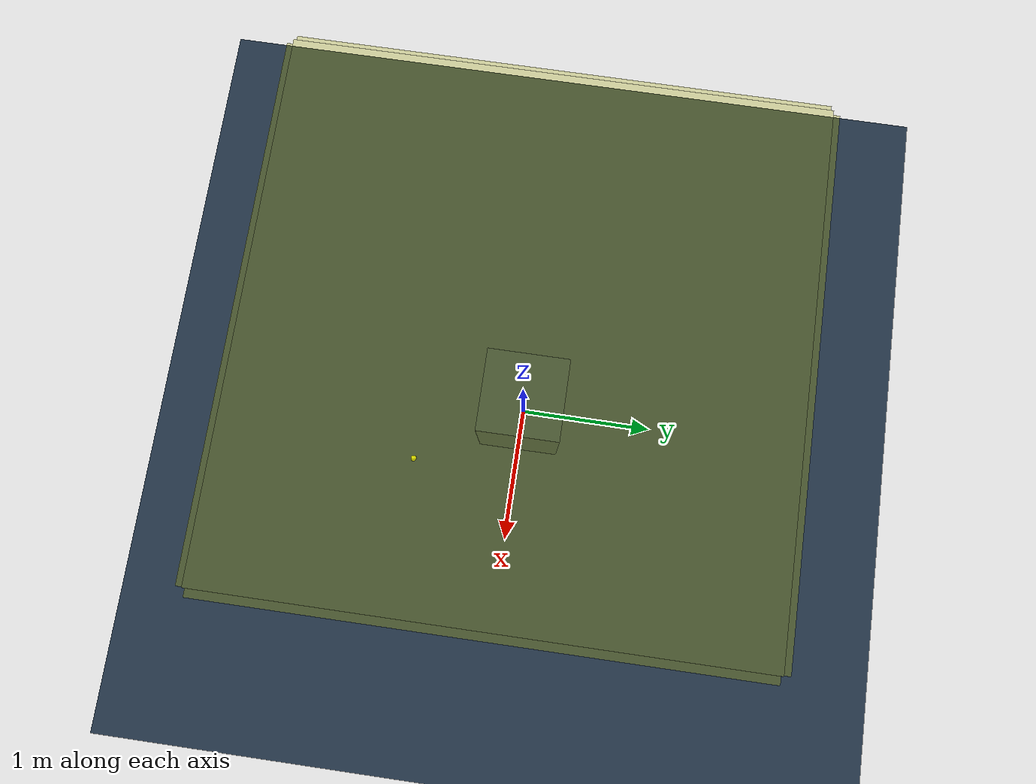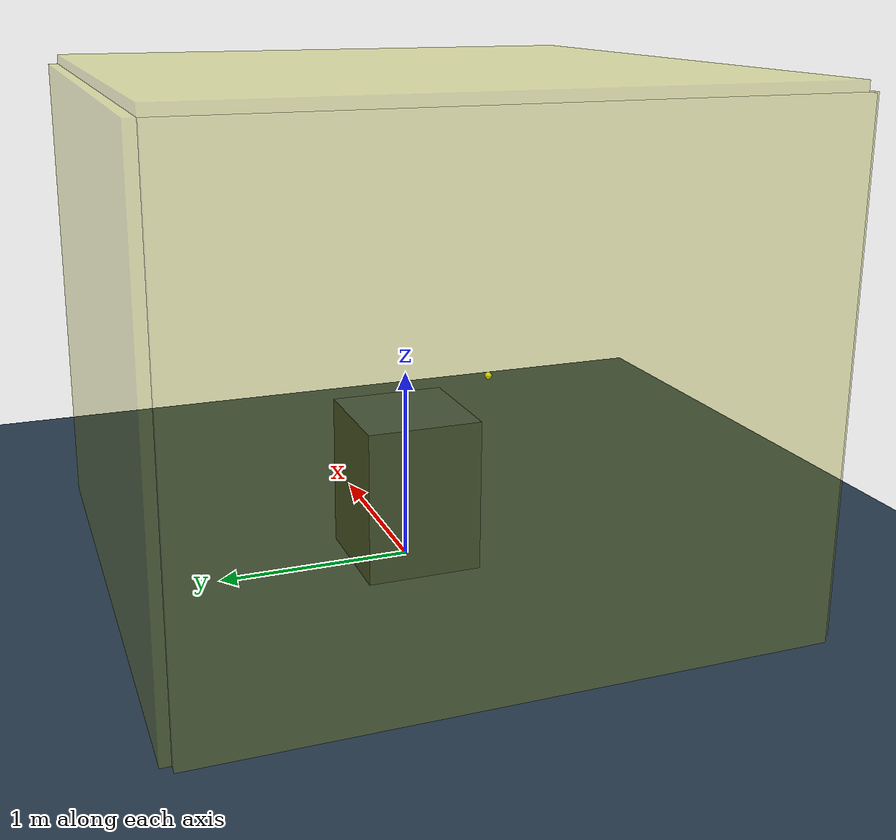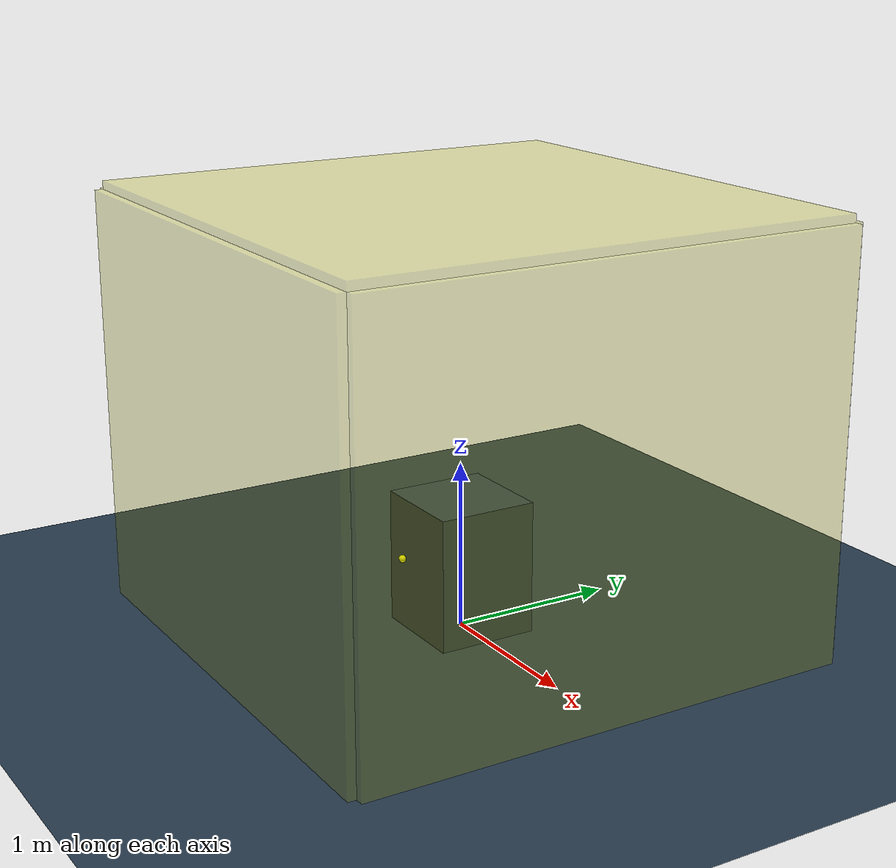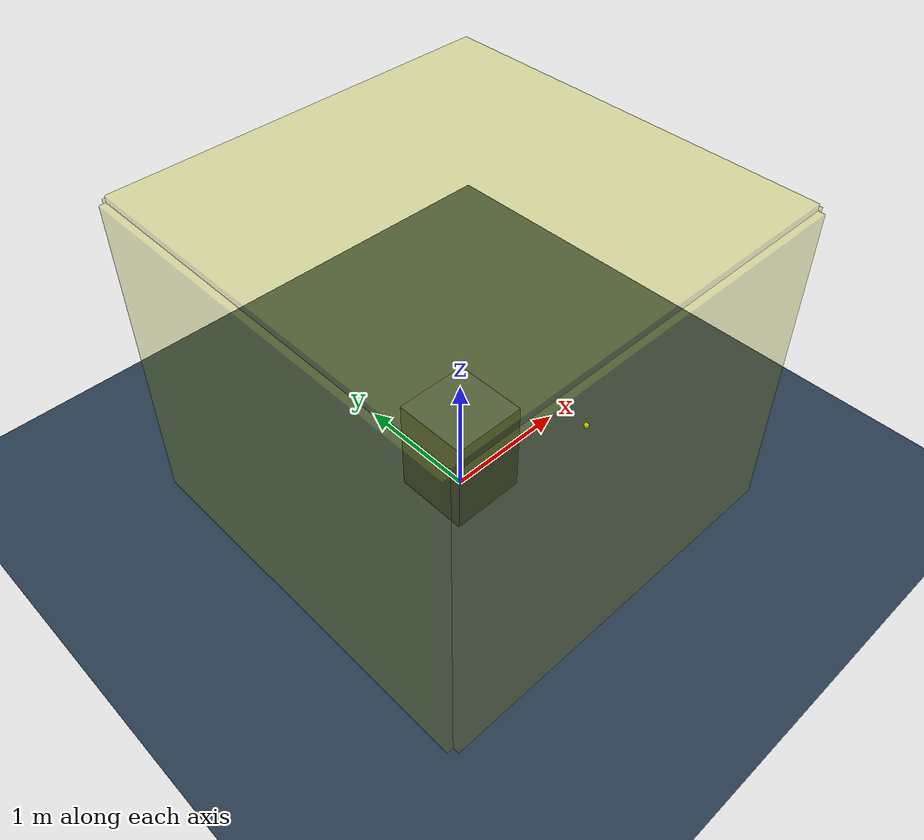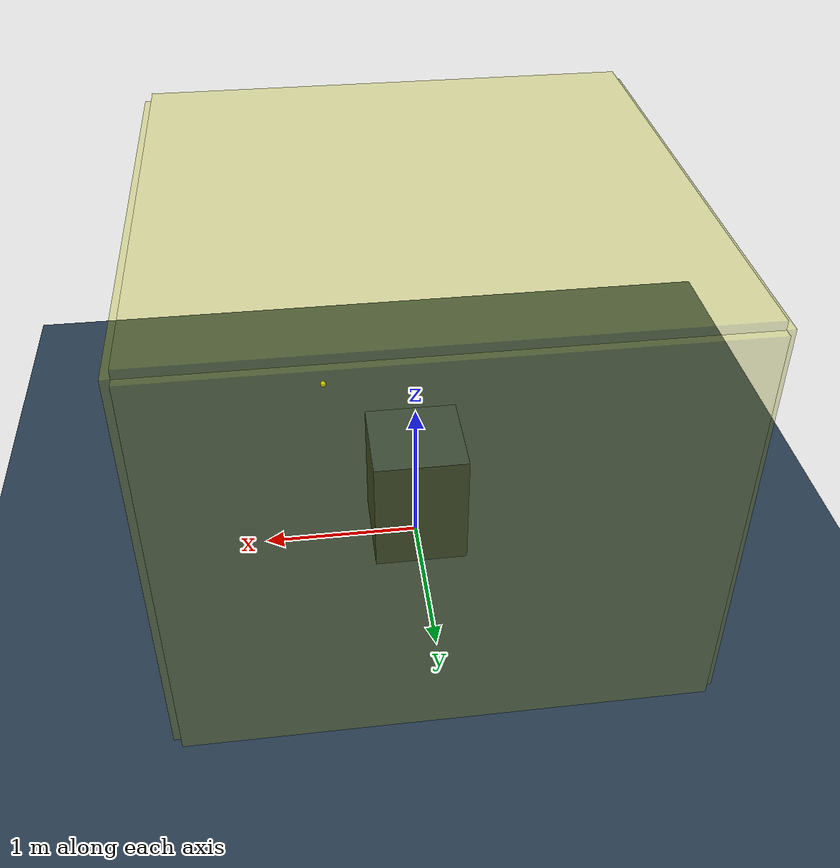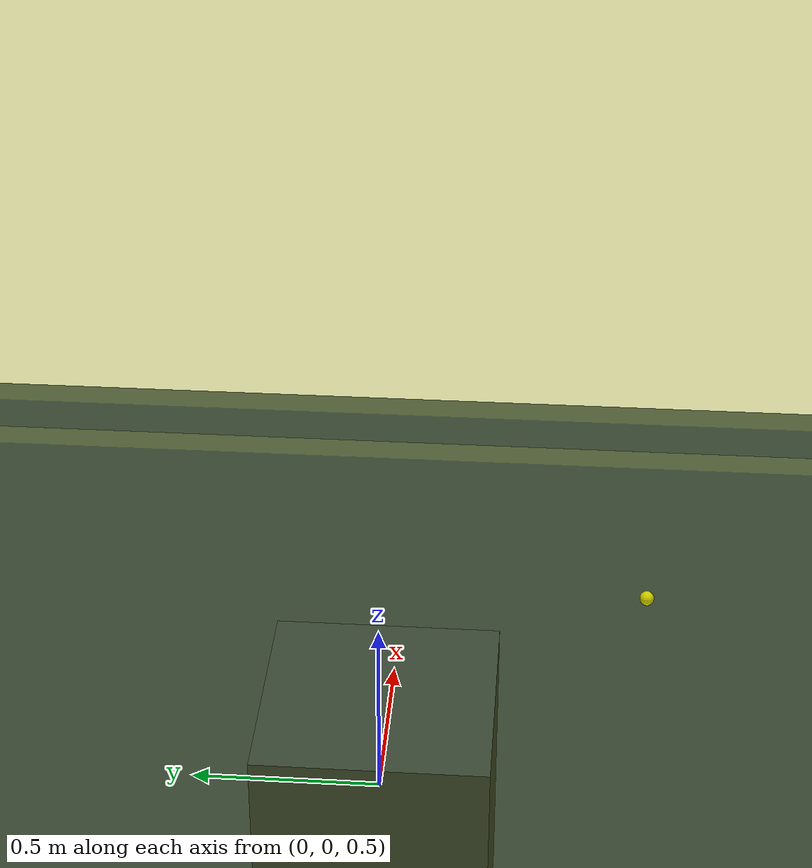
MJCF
<mujoco model="iiwa_workcell">
    <compiler angle="radian"/>
    <size nconmax="100" njmax="500" nstack="1270940"/>
    <asset>
        <!-- Gen3 Arm Meshes -->
        <mesh name="Base_Link" file="meshes/Base_Link.stl"/>
        <mesh name="Shoulder_Link" file="meshes/Shoulder_Link.stl"/>
        <mesh name="HalfArm1_Link" file="meshes/HalfArm1_Link.stl"/>
        <mesh name="HalfArm2_Link" file="meshes/HalfArm2_Link.stl"/>
        <mesh name="ForeArm_Link" file="meshes/ForeArm_Link.stl"/>
        <mesh name="SphericalWrist1_Link" file="meshes/SphericalWrist1_Link.stl"/>
        <mesh name="SphericalWrist2_Link" file="meshes/SphericalWrist2_Link.stl"/>
        <mesh name="Bracelet_Link" file="meshes/Bracelet_Link.stl"/>
        <mesh name="Hebi_Mount_Link" file="meshes/hebi_mount.stl" scale="0.001 0.001 0.001"/>
        <mesh name="Hebi_Proximal_Link" file="meshes/hebi_proximal.stl" scale="0.001 0.001 0.001"/>
        <mesh name="Hebi_Distal_Link" file="meshes/hebi_distal.stl" scale="0.001 0.001 0.001"/>

        <material name="BeigeMaterial" specular="0" shininess="0" reflectance="0" rgba="0.26 0.16 0.16796875 1" emission="0" />
        <texture name="texplane" type="2d" builtin="checker" rgb1=".2 .3 .4" rgb2=".1 0.15 0.2" width="512" height="512" />
        <material name="MatPlane" reflectance="0" texture="texplane" texrepeat="1 1" texuniform="true" />
        <material name="MatGnd" specular=".3" shininess=".3" reflectance="0.3" rgba=".5 .55 .5 1"/>
    </asset>

    <custom>
        <numeric name="env_size" size="6" data="-1.5 -1.5 0 1.5 1.5 2.5"/>
    </custom>

    <worldbody>
        <!-- Lights -->
        <light name="light0" diffuse=".5 .5 .5" pos="1.5 1.5 2"   dir="-1 -1 -.5" castshadow="false" />
        <light name="light1" diffuse=".5 .5 .5" pos="-1.5 1.5 2"  dir="1 -1 -.5" castshadow="false" />
        <light name="light2" diffuse=".5 .5 .5" pos="1.5 -1.5 2"  dir="-1 1 -.5" castshadow="false" />
        <light name="light3" diffuse=".5 .5 .5" pos="-1.5 -1.5 2" dir="1 1 -.5" castshadow="false" />

        <!-- obstacles -->
        <body name="obstacles" pos="0 0 0">
            <include file="obstacles.xml"/>
        </body>

        <!-- env limits represented as with an outer dome -->
        <body name="outer_dome" pos="0.0 0.0 0.0" quat="1 0 0 0">
            <geom name="w1" size="0.05 1.5 1.25" pos="1.5 0.0 1.25" type="box" rgba="0.7 0.7 0.0 0.3" contype="3" conaffinity="3"/>
            <geom name="w2" size="1.5 0.05 1.25" pos="0.0 1.5 1.25" type="box" rgba="0.7 0.7 0.0 0.3" contype="3" conaffinity="3"/>
            <geom name="w3" size="0.05 1.5 1.25" pos="-1.5 0.0 1.25" type="box" rgba="0.7 0.7 0.0 0.3" contype="3" conaffinity="3"/>
            <geom name="w4" size="1.5 0.05 1.25" pos="0.0 -1.5 1.25" type="box" rgba="0.7 0.7 0.0 0.3" contype="3" conaffinity="3"/>
            <geom name="w5" size="1.5 1.5 0.05" pos="0 0 0" type="box" rgba="0.7 0.7 0.0 0.3" contype="3" conaffinity="3"/>
            <geom name="w6" size="1.5 1.5 0.05" pos="0 0 2.5" type="box" rgba="0.7 0.7 0.0 0.3" contype="3" conaffinity="3"/>
        </body>

        <body name="b1" pos="0.55 -0.7 0.75" quat="1 0 0 0">
            <inertial pos="0 0 0" mass=".1" diaginertia="1e-4 1e-4 1e-4"/>
            <joint name="b1" type="free" limited="false" />
            <geom name="b1" type="sphere" size="0.02" rgba="1 1 0 1" contype="1" conaffinity="1"/>
        </body>

    </worldbody>

</mujoco>

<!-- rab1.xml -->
<mujoco model="rab1">
    <!--  ================= right_angle_box ================= /-->
    <geom name="t0" type="box" pos="-0.25 0.0 0.25" size="0.05 0.3 0.05" rgba=".6 .6 .5 0.4" conaffinity="32" contype="32" condim='3' friction='1 1 1' priority="1"/>
    <geom name="t1" type="box" pos="0.0 0.0 -0.25" size="0.5 0.3 0.05" rgba=".6 .6 .5 0.4" conaffinity="32" contype="32" condim='3' friction='1 1 1' priority="1"/>
    <geom name="t2" type="box" pos="0.0 -0.35 0.0" size="0.5 0.05 0.3000" rgba=".6 .6 .5 0.4" conaffinity="32" contype="32" condim='3' friction='1 1 1'  priority="1"/>
    <geom name="t3" type="box" pos="0.0 0.35 0.0" size="0.5 0.05 0.3000" rgba=".6 .6 .5 0.4" conaffinity="32" contype="32" condim='3' friction='1 1 1'  priority="1"/>
    <geom name="t4" type="box" pos="0.55 0.0 0.0" size="0.05 0.4 0.3000" rgba=".6 .6 .5 0.4" conaffinity="32" contype="32" condim='3' friction='1 1 1'  priority="1"/>
</mujoco>

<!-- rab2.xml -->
<mujoco model="rab2">
    <!--  ================= right_angle_box ================= /-->
    <geom name="t5" type="box" pos="-0.35 0.0 0.25" size="0.15 0.3 0.05" rgba=".6 .6 .5 0.4" conaffinity="32" contype="32" condim='3' friction='1 1 1' priority="1"/>
    <geom name="t6" type="box" pos="0.0 0.0 -0.25" size="0.5 0.3 0.05" rgba=".6 .6 .5 0.4" conaffinity="32" contype="32" condim='3' friction='1 1 1' priority="1"/>
    <geom name="t7" type="box" pos="0.0 -0.35 0.0" size="0.5 0.05 0.3000" rgba=".6 .6 .5 0.4" conaffinity="32" contype="32" condim='3' friction='1 1 1'  priority="1"/>
    <geom name="t8" type="box" pos="0.0 0.35 0.0" size="0.5 0.05 0.3000" rgba=".6 .6 .5 0.4" conaffinity="32" contype="32" condim='3' friction='1 1 1'  priority="1"/>
    <geom name="t9" type="box" pos="0.55 0.0 0.0" size="0.05 0.4 0.3000" rgba=".6 .6 .5 0.4" conaffinity="32" contype="32" condim='3' friction='1 1 1'  priority="1"/>
</mujoco>

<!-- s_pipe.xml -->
<mujoco model="s_pipe">

    <body name="low" pos="0.0 0.0 0.0" euler="0 0 0">
        <include file="rab1.xml"/>
    </body>

    <!-- straight S  -->
    <!-- left twisted S  -->
    <body name="high" pos="0.2 0.2 0.6" euler="0 3.1415 -1.5708">
        <include file="rab2.xml"/>
    </body>

</mujoco>

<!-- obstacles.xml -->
<mujoco model="obstacles">
    <!-- Floor -->
    <geom name="floor" pos="0 0 0" size="5 5 .125" type="plane" material="MatPlane" condim="3"  contype="1" conaffinity="1"/>

    <!-- Environment: Workcell -->
    <body name="workcell" pos="0 0 0" quat="0.707 0 0 -0.707">
        <geom name="table" size="0.3 0.3 0.4" pos="0 0.0 0.4" type="box" rgba="0.16 0.24 0.32 1"  conaffinity="32" contype="32"/>
    </body>

    <!--  ================= box ================= /-->

    <body name="s_pipe" pos="0.8 0.0 1.1" euler="0 0 0">
            <include file="s_pipe.xml"/>
    </body>

</mujoco>
